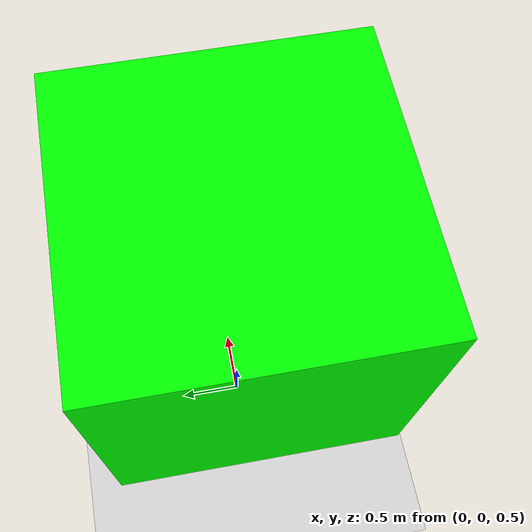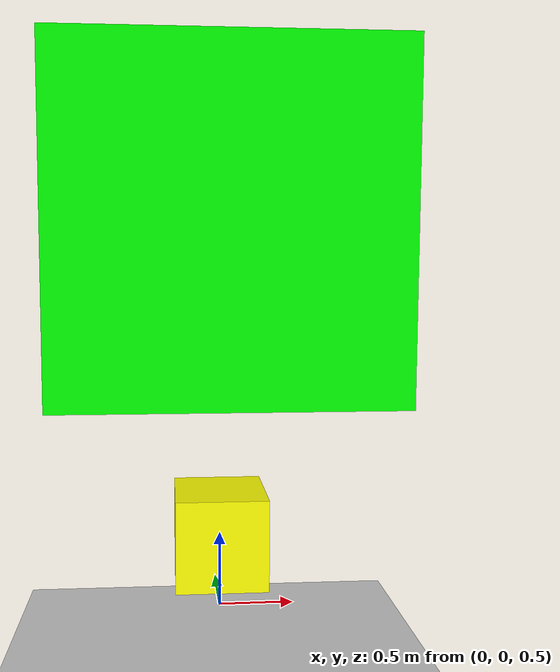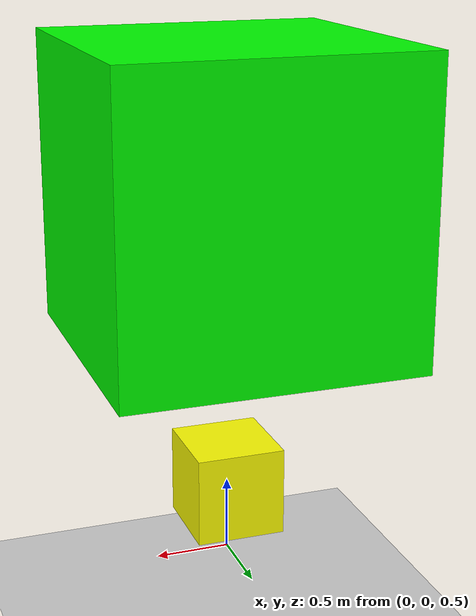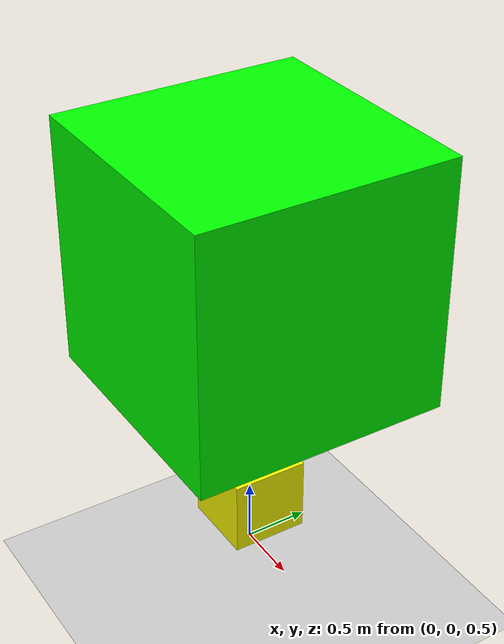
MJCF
<mujoco>
<worldbody>
<light diffuse=".5 .5 .5" pos="0 0 2" dir="0 -1 0"/>
<geom type="plane" size="20 20 0.1" rgba="0.8 0.8 0.8 1"/>
<body name = "main0" pos = "0 0 1">
<geom type = "box" size = "0.3 0.3 0.3" rgba = "1 1 0 1"/>
<joint name = "jmain" type = "free" axis = "0 1 0" pos = "0 0 0"/>
<body name = "main1" pos = "0 0 2">
<geom type = "box" size = "1 1 1" rgba = "0 1 0 1"/>
<body name = "arm0" pos = "0 0 0.5">
<geom type = "box" size = "0.2 0.2 0.2" rgba = "1 0 1 1"/>
<joint name = "jarm" type = "hinge" axis = "0 1 0" pos = "0 0 -0.2"/>
</body>
</body>
</body>
</worldbody>
<actuator>
<motor name = "marm" joint = "jarm" gear = "1" ctrllimited = "true" ctrlrange = "-1 1"/>
</actuator>
</mujoco>
